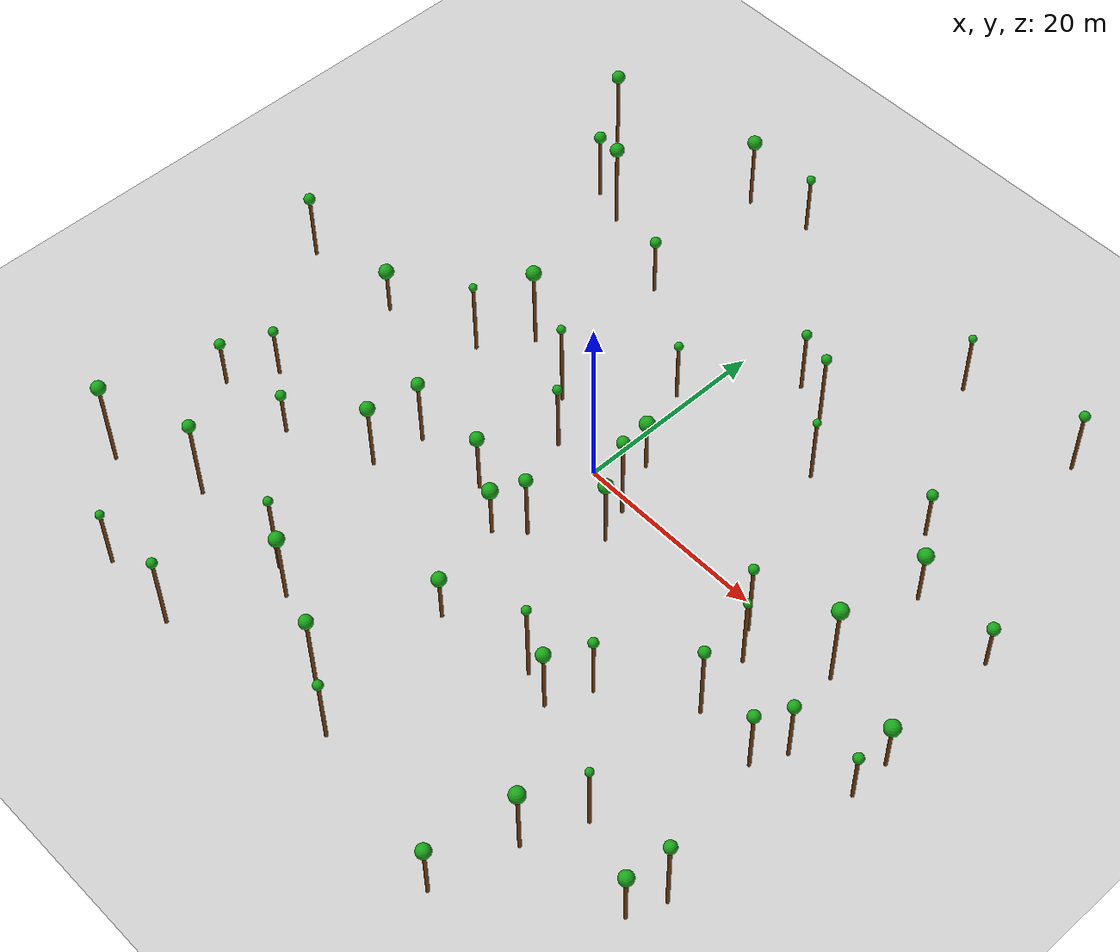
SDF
<sdf version="1.6">
 <world name="forest_world">
  <include><uri>model://sun</uri></include>
  <include><uri>model://ground_plane</uri></include>
  <model name="tree_115">
   <static>true</static>
   <link name="tree_link">
    <collision name="trunk_collision">
     <pose>-4.75 -0.07 3.91 0 0 0</pose>
     <geometry><cylinder><radius>0.18</radius><length>7.83</length></cylinder></geometry>
    </collision>
    <visual name="trunk_visual">
     <pose>-4.75 -0.07 3.91 0 0 0</pose>
     <geometry><cylinder><radius>0.18</radius><length>7.83</length></cylinder></geometry>
     <material><ambient>0.35 0.20 0.05 1</ambient><diffuse>0.45 0.25 0.08 1</diffuse></material>
    </visual>
    <visual name="leaf_visual">
     <pose>-4.75 -0.07 8.07 0 0 0</pose>
     <geometry><sphere><radius>0.48</radius></sphere></geometry>
     <material><ambient>0.05 0.45 0.05 1</ambient><diffuse>0.10 0.65 0.10 1</diffuse></material>
    </visual>
   </link>
  </model>
  <model name="tree_116">
   <static>true</static>
   <link name="tree_link">
    <collision name="trunk_collision">
     <pose>-22.12 24.09 4.78 0 0 0</pose>
     <geometry><cylinder><radius>0.18</radius><length>9.55</length></cylinder></geometry>
    </collision>
    <visual name="trunk_visual">
     <pose>-22.12 24.09 4.78 0 0 0</pose>
     <geometry><cylinder><radius>0.18</radius><length>9.55</length></cylinder></geometry>
     <material><ambient>0.35 0.20 0.05 1</ambient><diffuse>0.45 0.25 0.08 1</diffuse></material>
    </visual>
    <visual name="leaf_visual">
     <pose>-22.12 24.09 9.92 0 0 0</pose>
     <geometry><sphere><radius>0.72</radius></sphere></geometry>
     <material><ambient>0.05 0.45 0.05 1</ambient><diffuse>0.10 0.65 0.10 1</diffuse></material>
    </visual>
   </link>
  </model>
  <model name="tree_117">
   <static>true</static>
   <link name="tree_link">
    <collision name="trunk_collision">
     <pose>-8.00 37.29 3.37 0 0 0</pose>
     <geometry><cylinder><radius>0.18</radius><length>6.73</length></cylinder></geometry>
    </collision>
    <visual name="trunk_visual">
     <pose>-8.00 37.29 3.37 0 0 0</pose>
     <geometry><cylinder><radius>0.18</radius><length>6.73</length></cylinder></geometry>
     <material><ambient>0.35 0.20 0.05 1</ambient><diffuse>0.45 0.25 0.08 1</diffuse></material>
    </visual>
    <visual name="leaf_visual">
     <pose>-8.00 37.29 6.96 0 0 0</pose>
     <geometry><sphere><radius>0.46</radius></sphere></geometry>
     <material><ambient>0.05 0.45 0.05 1</ambient><diffuse>0.10 0.65 0.10 1</diffuse></material>
    </visual>
   </link>
  </model>
  <model name="tree_118">
   <static>true</static>
   <link name="tree_link">
    <collision name="trunk_collision">
     <pose>31.87 -11.92 3.73 0 0 0</pose>
     <geometry><cylinder><radius>0.18</radius><length>7.47</length></cylinder></geometry>
    </collision>
    <visual name="trunk_visual">
     <pose>31.87 -11.92 3.73 0 0 0</pose>
     <geometry><cylinder><radius>0.18</radius><length>7.47</length></cylinder></geometry>
     <material><ambient>0.35 0.20 0.05 1</ambient><diffuse>0.45 0.25 0.08 1</diffuse></material>
    </visual>
    <visual name="leaf_visual">
     <pose>31.87 -11.92 7.77 0 0 0</pose>
     <geometry><sphere><radius>0.61</radius></sphere></geometry>
     <material><ambient>0.05 0.45 0.05 1</ambient><diffuse>0.10 0.65 0.10 1</diffuse></material>
    </visual>
   </link>
  </model>
  <model name="tree_119">
   <static>true</static>
   <link name="tree_link">
    <collision name="trunk_collision">
     <pose>16.97 32.80 3.59 0 0 0</pose>
     <geometry><cylinder><radius>0.18</radius><length>7.17</length></cylinder></geometry>
    </collision>
    <visual name="trunk_visual">
     <pose>16.97 32.80 3.59 0 0 0</pose>
     <geometry><cylinder><radius>0.18</radius><length>7.17</length></cylinder></geometry>
     <material><ambient>0.35 0.20 0.05 1</ambient><diffuse>0.45 0.25 0.08 1</diffuse></material>
    </visual>
    <visual name="leaf_visual">
     <pose>16.97 32.80 7.38 0 0 0</pose>
     <geometry><sphere><radius>0.41</radius></sphere></geometry>
     <material><ambient>0.05 0.45 0.05 1</ambient><diffuse>0.10 0.65 0.10 1</diffuse></material>
    </visual>
   </link>
  </model>
  <model name="tree_120">
   <static>true</static>
   <link name="tree_link">
    <collision name="trunk_collision">
     <pose>36.29 -25.99 4.45 0 0 0</pose>
     <geometry><cylinder><radius>0.18</radius><length>8.89</length></cylinder></geometry>
    </collision>
    <visual name="trunk_visual">
     <pose>36.29 -25.99 4.45 0 0 0</pose>
     <geometry><cylinder><radius>0.18</radius><length>8.89</length></cylinder></geometry>
     <material><ambient>0.35 0.20 0.05 1</ambient><diffuse>0.45 0.25 0.08 1</diffuse></material>
    </visual>
    <visual name="leaf_visual">
     <pose>36.29 -25.99 9.20 0 0 0</pose>
     <geometry><sphere><radius>0.61</radius></sphere></geometry>
     <material><ambient>0.05 0.45 0.05 1</ambient><diffuse>0.10 0.65 0.10 1</diffuse></material>
    </visual>
   </link>
  </model>
  <model name="tree_121">
   <static>true</static>
   <link name="tree_link">
    <collision name="trunk_collision">
     <pose>-13.93 -39.11 4.37 0 0 0</pose>
     <geometry><cylinder><radius>0.18</radius><length>8.73</length></cylinder></geometry>
    </collision>
    <visual name="trunk_visual">
     <pose>-13.93 -39.11 4.37 0 0 0</pose>
     <geometry><cylinder><radius>0.18</radius><length>8.73</length></cylinder></geometry>
     <material><ambient>0.35 0.20 0.05 1</ambient><diffuse>0.45 0.25 0.08 1</diffuse></material>
    </visual>
    <visual name="leaf_visual">
     <pose>-13.93 -39.11 8.98 0 0 0</pose>
     <geometry><sphere><radius>0.50</radius></sphere></geometry>
     <material><ambient>0.05 0.45 0.05 1</ambient><diffuse>0.10 0.65 0.10 1</diffuse></material>
    </visual>
   </link>
  </model>
  <model name="tree_122">
   <static>true</static>
   <link name="tree_link">
    <collision name="trunk_collision">
     <pose>33.44 -8.75 3.65 0 0 0</pose>
     <geometry><cylinder><radius>0.18</radius><length>7.31</length></cylinder></geometry>
    </collision>
    <visual name="trunk_visual">
     <pose>33.44 -8.75 3.65 0 0 0</pose>
     <geometry><cylinder><radius>0.18</radius><length>7.31</length></cylinder></geometry>
     <material><ambient>0.35 0.20 0.05 1</ambient><diffuse>0.45 0.25 0.08 1</diffuse></material>
    </visual>
    <visual name="leaf_visual">
     <pose>33.44 -8.75 7.62 0 0 0</pose>
     <geometry><sphere><radius>0.62</radius></sphere></geometry>
     <material><ambient>0.05 0.45 0.05 1</ambient><diffuse>0.10 0.65 0.10 1</diffuse></material>
    </visual>
   </link>
  </model>
  <model name="tree_123">
   <static>true</static>
   <link name="tree_link">
    <collision name="trunk_collision">
     <pose>25.97 17.21 2.82 0 0 0</pose>
     <geometry><cylinder><radius>0.18</radius><length>5.64</length></cylinder></geometry>
    </collision>
    <visual name="trunk_visual">
     <pose>25.97 17.21 2.82 0 0 0</pose>
     <geometry><cylinder><radius>0.18</radius><length>5.64</length></cylinder></geometry>
     <material><ambient>0.35 0.20 0.05 1</ambient><diffuse>0.45 0.25 0.08 1</diffuse></material>
    </visual>
    <visual name="leaf_visual">
     <pose>25.97 17.21 5.92 0 0 0</pose>
     <geometry><sphere><radius>0.55</radius></sphere></geometry>
     <material><ambient>0.05 0.45 0.05 1</ambient><diffuse>0.10 0.65 0.10 1</diffuse></material>
    </visual>
   </link>
  </model>
  <model name="tree_124">
   <static>true</static>
   <link name="tree_link">
    <collision name="trunk_collision">
     <pose>-25.98 25.47 3.85 0 0 0</pose>
     <geometry><cylinder><radius>0.18</radius><length>7.70</length></cylinder></geometry>
    </collision>
    <visual name="trunk_visual">
     <pose>-25.98 25.47 3.85 0 0 0</pose>
     <geometry><cylinder><radius>0.18</radius><length>7.70</length></cylinder></geometry>
     <material><ambient>0.35 0.20 0.05 1</ambient><diffuse>0.45 0.25 0.08 1</diffuse></material>
    </visual>
    <visual name="leaf_visual">
     <pose>-25.98 25.47 8.00 0 0 0</pose>
     <geometry><sphere><radius>0.61</radius></sphere></geometry>
     <material><ambient>0.05 0.45 0.05 1</ambient><diffuse>0.10 0.65 0.10 1</diffuse></material>
    </visual>
   </link>
  </model>
  <model name="tree_125">
   <static>true</static>
   <link name="tree_link">
    <collision name="trunk_collision">
     <pose>5.04 -1.15 4.92 0 0 0</pose>
     <geometry><cylinder><radius>0.18</radius><length>9.84</length></cylinder></geometry>
    </collision>
    <visual name="trunk_visual">
     <pose>5.04 -1.15 4.92 0 0 0</pose>
     <geometry><cylinder><radius>0.18</radius><length>9.84</length></cylinder></geometry>
     <material><ambient>0.35 0.20 0.05 1</ambient><diffuse>0.45 0.25 0.08 1</diffuse></material>
    </visual>
    <visual name="leaf_visual">
     <pose>5.04 -1.15 10.16 0 0 0</pose>
     <geometry><sphere><radius>0.64</radius></sphere></geometry>
     <material><ambient>0.05 0.45 0.05 1</ambient><diffuse>0.10 0.65 0.10 1</diffuse></material>
    </visual>
   </link>
  </model>
  <model name="tree_126">
   <static>true</static>
   <link name="tree_link">
    <collision name="trunk_collision">
     <pose>30.67 -0.50 4.99 0 0 0</pose>
     <geometry><cylinder><radius>0.18</radius><length>9.99</length></cylinder></geometry>
    </collision>
    <visual name="trunk_visual">
     <pose>30.67 -0.50 4.99 0 0 0</pose>
     <geometry><cylinder><radius>0.18</radius><length>9.99</length></cylinder></geometry>
     <material><ambient>0.35 0.20 0.05 1</ambient><diffuse>0.45 0.25 0.08 1</diffuse></material>
    </visual>
    <visual name="leaf_visual">
     <pose>30.67 -0.50 10.38 0 0 0</pose>
     <geometry><sphere><radius>0.78</radius></sphere></geometry>
     <material><ambient>0.05 0.45 0.05 1</ambient><diffuse>0.10 0.65 0.10 1</diffuse></material>
    </visual>
   </link>
  </model>
  <model name="tree_127">
   <static>true</static>
   <link name="tree_link">
    <collision name="trunk_collision">
     <pose>-8.60 4.01 4.91 0 0 0</pose>
     <geometry><cylinder><radius>0.18</radius><length>9.82</length></cylinder></geometry>
    </collision>
    <visual name="trunk_visual">
     <pose>-8.60 4.01 4.91 0 0 0</pose>
     <geometry><cylinder><radius>0.18</radius><length>9.82</length></cylinder></geometry>
     <material><ambient>0.35 0.20 0.05 1</ambient><diffuse>0.45 0.25 0.08 1</diffuse></material>
    </visual>
    <visual name="leaf_visual">
     <pose>-8.60 4.01 10.04 0 0 0</pose>
     <geometry><sphere><radius>0.44</radius></sphere></geometry>
     <material><ambient>0.05 0.45 0.05 1</ambient><diffuse>0.10 0.65 0.10 1</diffuse></material>
    </visual>
   </link>
  </model>
  <model name="tree_128">
   <static>true</static>
   <link name="tree_link">
    <collision name="trunk_collision">
     <pose>2.79 4.10 2.97 0 0 0</pose>
     <geometry><cylinder><radius>0.18</radius><length>5.95</length></cylinder></geometry>
    </collision>
    <visual name="trunk_visual">
     <pose>2.79 4.10 2.97 0 0 0</pose>
     <geometry><cylinder><radius>0.18</radius><length>5.95</length></cylinder></geometry>
     <material><ambient>0.35 0.20 0.05 1</ambient><diffuse>0.45 0.25 0.08 1</diffuse></material>
    </visual>
    <visual name="leaf_visual">
     <pose>2.79 4.10 6.34 0 0 0</pose>
     <geometry><sphere><radius>0.78</radius></sphere></geometry>
     <material><ambient>0.05 0.45 0.05 1</ambient><diffuse>0.10 0.65 0.10 1</diffuse></material>
    </visual>
   </link>
  </model>
  <model name="tree_129">
   <static>true</static>
   <link name="tree_link">
    <collision name="trunk_collision">
     <pose>-19.04 2.29 4.26 0 0 0</pose>
     <geometry><cylinder><radius>0.18</radius><length>8.51</length></cylinder></geometry>
    </collision>
    <visual name="trunk_visual">
     <pose>-19.04 2.29 4.26 0 0 0</pose>
     <geometry><cylinder><radius>0.18</radius><length>8.51</length></cylinder></geometry>
     <material><ambient>0.35 0.20 0.05 1</ambient><diffuse>0.45 0.25 0.08 1</diffuse></material>
    </visual>
    <visual name="leaf_visual">
     <pose>-19.04 2.29 8.72 0 0 0</pose>
     <geometry><sphere><radius>0.41</radius></sphere></geometry>
     <material><ambient>0.05 0.45 0.05 1</ambient><diffuse>0.10 0.65 0.10 1</diffuse></material>
    </visual>
   </link>
  </model>
  <model name="tree_130">
   <static>true</static>
   <link name="tree_link">
    <collision name="trunk_collision">
     <pose>-15.77 7.09 4.67 0 0 0</pose>
     <geometry><cylinder><radius>0.18</radius><length>9.34</length></cylinder></geometry>
    </collision>
    <visual name="trunk_visual">
     <pose>-15.77 7.09 4.67 0 0 0</pose>
     <geometry><cylinder><radius>0.18</radius><length>9.34</length></cylinder></geometry>
     <material><ambient>0.35 0.20 0.05 1</ambient><diffuse>0.45 0.25 0.08 1</diffuse></material>
    </visual>
    <visual name="leaf_visual">
     <pose>-15.77 7.09 9.72 0 0 0</pose>
     <geometry><sphere><radius>0.76</radius></sphere></geometry>
     <material><ambient>0.05 0.45 0.05 1</ambient><diffuse>0.10 0.65 0.10 1</diffuse></material>
    </visual>
   </link>
  </model>
  <model name="tree_131">
   <static>true</static>
   <link name="tree_link">
    <collision name="trunk_collision">
     <pose>24.22 -31.34 4.03 0 0 0</pose>
     <geometry><cylinder><radius>0.18</radius><length>8.07</length></cylinder></geometry>
    </collision>
    <visual name="trunk_visual">
     <pose>24.22 -31.34 4.03 0 0 0</pose>
     <geometry><cylinder><radius>0.18</radius><length>8.07</length></cylinder></geometry>
     <material><ambient>0.35 0.20 0.05 1</ambient><diffuse>0.45 0.25 0.08 1</diffuse></material>
    </visual>
    <visual name="leaf_visual">
     <pose>24.22 -31.34 8.45 0 0 0</pose>
     <geometry><sphere><radius>0.77</radius></sphere></geometry>
     <material><ambient>0.05 0.45 0.05 1</ambient><diffuse>0.10 0.65 0.10 1</diffuse></material>
    </visual>
   </link>
  </model>
  <model name="tree_132">
   <static>true</static>
   <link name="tree_link">
    <collision name="trunk_collision">
     <pose>6.33 -4.50 3.84 0 0 0</pose>
     <geometry><cylinder><radius>0.18</radius><length>7.69</length></cylinder></geometry>
    </collision>
    <visual name="trunk_visual">
     <pose>6.33 -4.50 3.84 0 0 0</pose>
     <geometry><cylinder><radius>0.18</radius><length>7.69</length></cylinder></geometry>
     <material><ambient>0.35 0.20 0.05 1</ambient><diffuse>0.45 0.25 0.08 1</diffuse></material>
    </visual>
    <visual name="leaf_visual">
     <pose>6.33 -4.50 8.06 0 0 0</pose>
     <geometry><sphere><radius>0.73</radius></sphere></geometry>
     <material><ambient>0.05 0.45 0.05 1</ambient><diffuse>0.10 0.65 0.10 1</diffuse></material>
    </visual>
   </link>
  </model>
  <model name="tree_133">
   <static>true</static>
   <link name="tree_link">
    <collision name="trunk_collision">
     <pose>-1.46 -11.43 2.88 0 0 0</pose>
     <geometry><cylinder><radius>0.18</radius><length>5.77</length></cylinder></geometry>
    </collision>
    <visual name="trunk_visual">
     <pose>-1.46 -11.43 2.88 0 0 0</pose>
     <geometry><cylinder><radius>0.18</radius><length>5.77</length></cylinder></geometry>
     <material><ambient>0.35 0.20 0.05 1</ambient><diffuse>0.45 0.25 0.08 1</diffuse></material>
    </visual>
    <visual name="leaf_visual">
     <pose>-1.46 -11.43 6.16 0 0 0</pose>
     <geometry><sphere><radius>0.79</radius></sphere></geometry>
     <material><ambient>0.05 0.45 0.05 1</ambient><diffuse>0.10 0.65 0.10 1</diffuse></material>
    </visual>
   </link>
  </model>
  <model name="tree_134">
   <static>true</static>
   <link name="tree_link">
    <collision name="trunk_collision">
     <pose>39.80 -3.42 2.73 0 0 0</pose>
     <geometry><cylinder><radius>0.18</radius><length>5.47</length></cylinder></geometry>
    </collision>
    <visual name="trunk_visual">
     <pose>39.80 -3.42 2.73 0 0 0</pose>
     <geometry><cylinder><radius>0.18</radius><length>5.47</length></cylinder></geometry>
     <material><ambient>0.35 0.20 0.05 1</ambient><diffuse>0.45 0.25 0.08 1</diffuse></material>
    </visual>
    <visual name="leaf_visual">
     <pose>39.80 -3.42 5.86 0 0 0</pose>
     <geometry><sphere><radius>0.79</radius></sphere></geometry>
     <material><ambient>0.05 0.45 0.05 1</ambient><diffuse>0.10 0.65 0.10 1</diffuse></material>
    </visual>
   </link>
  </model>
  <model name="tree_135">
   <static>true</static>
   <link name="tree_link">
    <collision name="trunk_collision">
     <pose>34.94 -29.47 3.18 0 0 0</pose>
     <geometry><cylinder><radius>0.18</radius><length>6.36</length></cylinder></geometry>
    </collision>
    <visual name="trunk_visual">
     <pose>34.94 -29.47 3.18 0 0 0</pose>
     <geometry><cylinder><radius>0.18</radius><length>6.36</length></cylinder></geometry>
     <material><ambient>0.35 0.20 0.05 1</ambient><diffuse>0.45 0.25 0.08 1</diffuse></material>
    </visual>
    <visual name="leaf_visual">
     <pose>34.94 -29.47 6.72 0 0 0</pose>
     <geometry><sphere><radius>0.72</radius></sphere></geometry>
     <material><ambient>0.05 0.45 0.05 1</ambient><diffuse>0.10 0.65 0.10 1</diffuse></material>
    </visual>
   </link>
  </model>
  <model name="tree_136">
   <static>true</static>
   <link name="tree_link">
    <collision name="trunk_collision">
     <pose>30.26 32.90 3.70 0 0 0</pose>
     <geometry><cylinder><radius>0.18</radius><length>7.41</length></cylinder></geometry>
    </collision>
    <visual name="trunk_visual">
     <pose>30.26 32.90 3.70 0 0 0</pose>
     <geometry><cylinder><radius>0.18</radius><length>7.41</length></cylinder></geometry>
     <material><ambient>0.35 0.20 0.05 1</ambient><diffuse>0.45 0.25 0.08 1</diffuse></material>
    </visual>
    <visual name="leaf_visual">
     <pose>30.26 32.90 7.67 0 0 0</pose>
     <geometry><sphere><radius>0.52</radius></sphere></geometry>
     <material><ambient>0.05 0.45 0.05 1</ambient><diffuse>0.10 0.65 0.10 1</diffuse></material>
    </visual>
   </link>
  </model>
  <model name="tree_137">
   <static>true</static>
   <link name="tree_link">
    <collision name="trunk_collision">
     <pose>-1.36 12.23 3.50 0 0 0</pose>
     <geometry><cylinder><radius>0.18</radius><length>7.01</length></cylinder></geometry>
    </collision>
    <visual name="trunk_visual">
     <pose>-1.36 12.23 3.50 0 0 0</pose>
     <geometry><cylinder><radius>0.18</radius><length>7.01</length></cylinder></geometry>
     <material><ambient>0.35 0.20 0.05 1</ambient><diffuse>0.45 0.25 0.08 1</diffuse></material>
    </visual>
    <visual name="leaf_visual">
     <pose>-1.36 12.23 7.23 0 0 0</pose>
     <geometry><sphere><radius>0.44</radius></sphere></geometry>
     <material><ambient>0.05 0.45 0.05 1</ambient><diffuse>0.10 0.65 0.10 1</diffuse></material>
    </visual>
   </link>
  </model>
  <model name="tree_138">
   <static>true</static>
   <link name="tree_link">
    <collision name="trunk_collision">
     <pose>-30.28 32.08 4.36 0 0 0</pose>
     <geometry><cylinder><radius>0.18</radius><length>8.72</length></cylinder></geometry>
    </collision>
    <visual name="trunk_visual">
     <pose>-30.28 32.08 4.36 0 0 0</pose>
     <geometry><cylinder><radius>0.18</radius><length>8.72</length></cylinder></geometry>
     <material><ambient>0.35 0.20 0.05 1</ambient><diffuse>0.45 0.25 0.08 1</diffuse></material>
    </visual>
    <visual name="leaf_visual">
     <pose>-30.28 32.08 9.06 0 0 0</pose>
     <geometry><sphere><radius>0.68</radius></sphere></geometry>
     <material><ambient>0.05 0.45 0.05 1</ambient><diffuse>0.10 0.65 0.10 1</diffuse></material>
    </visual>
   </link>
  </model>
  <model name="tree_139">
   <static>true</static>
   <link name="tree_link">
    <collision name="trunk_collision">
     <pose>-39.51 -1.09 3.75 0 0 0</pose>
     <geometry><cylinder><radius>0.18</radius><length>7.49</length></cylinder></geometry>
    </collision>
    <visual name="trunk_visual">
     <pose>-39.51 -1.09 3.75 0 0 0</pose>
     <geometry><cylinder><radius>0.18</radius><length>7.49</length></cylinder></geometry>
     <material><ambient>0.35 0.20 0.05 1</ambient><diffuse>0.45 0.25 0.08 1</diffuse></material>
    </visual>
    <visual name="leaf_visual">
     <pose>-39.51 -1.09 7.79 0 0 0</pose>
     <geometry><sphere><radius>0.58</radius></sphere></geometry>
     <material><ambient>0.05 0.45 0.05 1</ambient><diffuse>0.10 0.65 0.10 1</diffuse></material>
    </visual>
   </link>
  </model>
  <model name="tree_140">
   <static>true</static>
   <link name="tree_link">
    <collision name="trunk_collision">
     <pose>14.20 14.45 3.88 0 0 0</pose>
     <geometry><cylinder><radius>0.18</radius><length>7.75</length></cylinder></geometry>
    </collision>
    <visual name="trunk_visual">
     <pose>14.20 14.45 3.88 0 0 0</pose>
     <geometry><cylinder><radius>0.18</radius><length>7.75</length></cylinder></geometry>
     <material><ambient>0.35 0.20 0.05 1</ambient><diffuse>0.45 0.25 0.08 1</diffuse></material>
    </visual>
    <visual name="leaf_visual">
     <pose>14.20 14.45 7.95 0 0 0</pose>
     <geometry><sphere><radius>0.40</radius></sphere></geometry>
     <material><ambient>0.05 0.45 0.05 1</ambient><diffuse>0.10 0.65 0.10 1</diffuse></material>
    </visual>
   </link>
  </model>
  <model name="tree_141">
   <static>true</static>
   <link name="tree_link">
    <collision name="trunk_collision">
     <pose>30.28 11.36 3.08 0 0 0</pose>
     <geometry><cylinder><radius>0.18</radius><length>6.16</length></cylinder></geometry>
    </collision>
    <visual name="trunk_visual">
     <pose>30.28 11.36 3.08 0 0 0</pose>
     <geometry><cylinder><radius>0.18</radius><length>6.16</length></cylinder></geometry>
     <material><ambient>0.35 0.20 0.05 1</ambient><diffuse>0.45 0.25 0.08 1</diffuse></material>
    </visual>
    <visual name="leaf_visual">
     <pose>30.28 11.36 6.55 0 0 0</pose>
     <geometry><sphere><radius>0.77</radius></sphere></geometry>
     <material><ambient>0.05 0.45 0.05 1</ambient><diffuse>0.10 0.65 0.10 1</diffuse></material>
    </visual>
   </link>
  </model>
  <model name="tree_142">
   <static>true</static>
   <link name="tree_link">
    <collision name="trunk_collision">
     <pose>-11.72 -28.05 4.81 0 0 0</pose>
     <geometry><cylinder><radius>0.18</radius><length>9.62</length></cylinder></geometry>
    </collision>
    <visual name="trunk_visual">
     <pose>-11.72 -28.05 4.81 0 0 0</pose>
     <geometry><cylinder><radius>0.18</radius><length>9.62</length></cylinder></geometry>
     <material><ambient>0.35 0.20 0.05 1</ambient><diffuse>0.45 0.25 0.08 1</diffuse></material>
    </visual>
    <visual name="leaf_visual">
     <pose>-11.72 -28.05 9.85 0 0 0</pose>
     <geometry><sphere><radius>0.46</radius></sphere></geometry>
     <material><ambient>0.05 0.45 0.05 1</ambient><diffuse>0.10 0.65 0.10 1</diffuse></material>
    </visual>
   </link>
  </model>
  <model name="tree_143">
   <static>true</static>
   <link name="tree_link">
    <collision name="trunk_collision">
     <pose>17.40 -16.48 3.66 0 0 0</pose>
     <geometry><cylinder><radius>0.18</radius><length>7.33</length></cylinder></geometry>
    </collision>
    <visual name="trunk_visual">
     <pose>17.40 -16.48 3.66 0 0 0</pose>
     <geometry><cylinder><radius>0.18</radius><length>7.33</length></cylinder></geometry>
     <material><ambient>0.35 0.20 0.05 1</ambient><diffuse>0.45 0.25 0.08 1</diffuse></material>
    </visual>
    <visual name="leaf_visual">
     <pose>17.40 -16.48 7.58 0 0 0</pose>
     <geometry><sphere><radius>0.50</radius></sphere></geometry>
     <material><ambient>0.05 0.45 0.05 1</ambient><diffuse>0.10 0.65 0.10 1</diffuse></material>
    </visual>
   </link>
  </model>
  <model name="tree_144">
   <static>true</static>
   <link name="tree_link">
    <collision name="trunk_collision">
     <pose>39.91 -7.71 2.89 0 0 0</pose>
     <geometry><cylinder><radius>0.18</radius><length>5.78</length></cylinder></geometry>
    </collision>
    <visual name="trunk_visual">
     <pose>39.91 -7.71 2.89 0 0 0</pose>
     <geometry><cylinder><radius>0.18</radius><length>5.78</length></cylinder></geometry>
     <material><ambient>0.35 0.20 0.05 1</ambient><diffuse>0.45 0.25 0.08 1</diffuse></material>
    </visual>
    <visual name="leaf_visual">
     <pose>39.91 -7.71 6.04 0 0 0</pose>
     <geometry><sphere><radius>0.52</radius></sphere></geometry>
     <material><ambient>0.05 0.45 0.05 1</ambient><diffuse>0.10 0.65 0.10 1</diffuse></material>
    </visual>
   </link>
  </model>
  <model name="tree_145">
   <static>true</static>
   <link name="tree_link">
    <collision name="trunk_collision">
     <pose>-22.62 -38.69 3.42 0 0 0</pose>
     <geometry><cylinder><radius>0.18</radius><length>6.84</length></cylinder></geometry>
    </collision>
    <visual name="trunk_visual">
     <pose>-22.62 -38.69 3.42 0 0 0</pose>
     <geometry><cylinder><radius>0.18</radius><length>6.84</length></cylinder></geometry>
     <material><ambient>0.35 0.20 0.05 1</ambient><diffuse>0.45 0.25 0.08 1</diffuse></material>
    </visual>
    <visual name="leaf_visual">
     <pose>-22.62 -38.69 7.05 0 0 0</pose>
     <geometry><sphere><radius>0.43</radius></sphere></geometry>
     <material><ambient>0.05 0.45 0.05 1</ambient><diffuse>0.10 0.65 0.10 1</diffuse></material>
    </visual>
   </link>
  </model>
  <model name="tree_146">
   <static>true</static>
   <link name="tree_link">
    <collision name="trunk_collision">
     <pose>-6.11 -8.81 3.38 0 0 0</pose>
     <geometry><cylinder><radius>0.18</radius><length>6.77</length></cylinder></geometry>
    </collision>
    <visual name="trunk_visual">
     <pose>-6.11 -8.81 3.38 0 0 0</pose>
     <geometry><cylinder><radius>0.18</radius><length>6.77</length></cylinder></geometry>
     <material><ambient>0.35 0.20 0.05 1</ambient><diffuse>0.45 0.25 0.08 1</diffuse></material>
    </visual>
    <visual name="leaf_visual">
     <pose>-6.11 -8.81 7.12 0 0 0</pose>
     <geometry><sphere><radius>0.71</radius></sphere></geometry>
     <material><ambient>0.05 0.45 0.05 1</ambient><diffuse>0.10 0.65 0.10 1</diffuse></material>
    </visual>
   </link>
  </model>
  <model name="tree_147">
   <static>true</static>
   <link name="tree_link">
    <collision name="trunk_collision">
     <pose>26.54 -25.54 3.96 0 0 0</pose>
     <geometry><cylinder><radius>0.18</radius><length>7.93</length></cylinder></geometry>
    </collision>
    <visual name="trunk_visual">
     <pose>26.54 -25.54 3.96 0 0 0</pose>
     <geometry><cylinder><radius>0.18</radius><length>7.93</length></cylinder></geometry>
     <material><ambient>0.35 0.20 0.05 1</ambient><diffuse>0.45 0.25 0.08 1</diffuse></material>
    </visual>
    <visual name="leaf_visual">
     <pose>26.54 -25.54 8.13 0 0 0</pose>
     <geometry><sphere><radius>0.41</radius></sphere></geometry>
     <material><ambient>0.05 0.45 0.05 1</ambient><diffuse>0.10 0.65 0.10 1</diffuse></material>
    </visual>
   </link>
  </model>
  <model name="tree_148">
   <static>true</static>
   <link name="tree_link">
    <collision name="trunk_collision">
     <pose>-28.68 -0.58 2.55 0 0 0</pose>
     <geometry><cylinder><radius>0.18</radius><length>5.10</length></cylinder></geometry>
    </collision>
    <visual name="trunk_visual">
     <pose>-28.68 -0.58 2.55 0 0 0</pose>
     <geometry><cylinder><radius>0.18</radius><length>5.10</length></cylinder></geometry>
     <material><ambient>0.35 0.20 0.05 1</ambient><diffuse>0.45 0.25 0.08 1</diffuse></material>
    </visual>
    <visual name="leaf_visual">
     <pose>-28.68 -0.58 5.48 0 0 0</pose>
     <geometry><sphere><radius>0.77</radius></sphere></geometry>
     <material><ambient>0.05 0.45 0.05 1</ambient><diffuse>0.10 0.65 0.10 1</diffuse></material>
    </visual>
   </link>
  </model>
  <model name="tree_149">
   <static>true</static>
   <link name="tree_link">
    <collision name="trunk_collision">
     <pose>2.41 -20.87 2.65 0 0 0</pose>
     <geometry><cylinder><radius>0.18</radius><length>5.30</length></cylinder></geometry>
    </collision>
    <visual name="trunk_visual">
     <pose>2.41 -20.87 2.65 0 0 0</pose>
     <geometry><cylinder><radius>0.18</radius><length>5.30</length></cylinder></geometry>
     <material><ambient>0.35 0.20 0.05 1</ambient><diffuse>0.45 0.25 0.08 1</diffuse></material>
    </visual>
    <visual name="leaf_visual">
     <pose>2.41 -20.87 5.66 0 0 0</pose>
     <geometry><sphere><radius>0.72</radius></sphere></geometry>
     <material><ambient>0.05 0.45 0.05 1</ambient><diffuse>0.10 0.65 0.10 1</diffuse></material>
    </visual>
   </link>
  </model>
  <model name="tree_150">
   <static>true</static>
   <link name="tree_link">
    <collision name="trunk_collision">
     <pose>0.88 -9.15 3.79 0 0 0</pose>
     <geometry><cylinder><radius>0.18</radius><length>7.58</length></cylinder></geometry>
    </collision>
    <visual name="trunk_visual">
     <pose>0.88 -9.15 3.79 0 0 0</pose>
     <geometry><cylinder><radius>0.18</radius><length>7.58</length></cylinder></geometry>
     <material><ambient>0.35 0.20 0.05 1</ambient><diffuse>0.45 0.25 0.08 1</diffuse></material>
    </visual>
    <visual name="leaf_visual">
     <pose>0.88 -9.15 7.90 0 0 0</pose>
     <geometry><sphere><radius>0.65</radius></sphere></geometry>
     <material><ambient>0.05 0.45 0.05 1</ambient><diffuse>0.10 0.65 0.10 1</diffuse></material>
    </visual>
   </link>
  </model>
  <model name="tree_151">
   <static>true</static>
   <link name="tree_link">
    <collision name="trunk_collision">
     <pose>-29.75 -13.64 2.87 0 0 0</pose>
     <geometry><cylinder><radius>0.18</radius><length>5.75</length></cylinder></geometry>
    </collision>
    <visual name="trunk_visual">
     <pose>-29.75 -13.64 2.87 0 0 0</pose>
     <geometry><cylinder><radius>0.18</radius><length>5.75</length></cylinder></geometry>
     <material><ambient>0.35 0.20 0.05 1</ambient><diffuse>0.45 0.25 0.08 1</diffuse></material>
    </visual>
    <visual name="leaf_visual">
     <pose>-29.75 -13.64 6.00 0 0 0</pose>
     <geometry><sphere><radius>0.49</radius></sphere></geometry>
     <material><ambient>0.05 0.45 0.05 1</ambient><diffuse>0.10 0.65 0.10 1</diffuse></material>
    </visual>
   </link>
  </model>
  <model name="tree_152">
   <static>true</static>
   <link name="tree_link">
    <collision name="trunk_collision">
     <pose>-14.04 -8.97 3.88 0 0 0</pose>
     <geometry><cylinder><radius>0.18</radius><length>7.76</length></cylinder></geometry>
    </collision>
    <visual name="trunk_visual">
     <pose>-14.04 -8.97 3.88 0 0 0</pose>
     <geometry><cylinder><radius>0.18</radius><length>7.76</length></cylinder></geometry>
     <material><ambient>0.35 0.20 0.05 1</ambient><diffuse>0.45 0.25 0.08 1</diffuse></material>
    </visual>
    <visual name="leaf_visual">
     <pose>-14.04 -8.97 8.09 0 0 0</pose>
     <geometry><sphere><radius>0.66</radius></sphere></geometry>
     <material><ambient>0.05 0.45 0.05 1</ambient><diffuse>0.10 0.65 0.10 1</diffuse></material>
    </visual>
   </link>
  </model>
  <model name="tree_153">
   <static>true</static>
   <link name="tree_link">
    <collision name="trunk_collision">
     <pose>-23.19 -27.97 4.78 0 0 0</pose>
     <geometry><cylinder><radius>0.18</radius><length>9.57</length></cylinder></geometry>
    </collision>
    <visual name="trunk_visual">
     <pose>-23.19 -27.97 4.78 0 0 0</pose>
     <geometry><cylinder><radius>0.18</radius><length>9.57</length></cylinder></geometry>
     <material><ambient>0.35 0.20 0.05 1</ambient><diffuse>0.45 0.25 0.08 1</diffuse></material>
    </visual>
    <visual name="leaf_visual">
     <pose>-23.19 -27.97 9.88 0 0 0</pose>
     <geometry><sphere><radius>0.63</radius></sphere></geometry>
     <material><ambient>0.05 0.45 0.05 1</ambient><diffuse>0.10 0.65 0.10 1</diffuse></material>
    </visual>
   </link>
  </model>
  <model name="tree_154">
   <static>true</static>
   <link name="tree_link">
    <collision name="trunk_collision">
     <pose>25.32 -11.22 4.55 0 0 0</pose>
     <geometry><cylinder><radius>0.18</radius><length>9.10</length></cylinder></geometry>
    </collision>
    <visual name="trunk_visual">
     <pose>25.32 -11.22 4.55 0 0 0</pose>
     <geometry><cylinder><radius>0.18</radius><length>9.10</length></cylinder></geometry>
     <material><ambient>0.35 0.20 0.05 1</ambient><diffuse>0.45 0.25 0.08 1</diffuse></material>
    </visual>
    <visual name="leaf_visual">
     <pose>25.32 -11.22 9.38 0 0 0</pose>
     <geometry><sphere><radius>0.57</radius></sphere></geometry>
     <material><ambient>0.05 0.45 0.05 1</ambient><diffuse>0.10 0.65 0.10 1</diffuse></material>
    </visual>
   </link>
  </model>
  <model name="tree_155">
   <static>true</static>
   <link name="tree_link">
    <collision name="trunk_collision">
     <pose>24.16 -4.81 4.36 0 0 0</pose>
     <geometry><cylinder><radius>0.18</radius><length>8.73</length></cylinder></geometry>
    </collision>
    <visual name="trunk_visual">
     <pose>24.16 -4.81 4.36 0 0 0</pose>
     <geometry><cylinder><radius>0.18</radius><length>8.73</length></cylinder></geometry>
     <material><ambient>0.35 0.20 0.05 1</ambient><diffuse>0.45 0.25 0.08 1</diffuse></material>
    </visual>
    <visual name="leaf_visual">
     <pose>24.16 -4.81 8.94 0 0 0</pose>
     <geometry><sphere><radius>0.42</radius></sphere></geometry>
     <material><ambient>0.05 0.45 0.05 1</ambient><diffuse>0.10 0.65 0.10 1</diffuse></material>
    </visual>
   </link>
  </model>
  <model name="tree_156">
   <static>true</static>
   <link name="tree_link">
    <collision name="trunk_collision">
     <pose>15.58 -20.57 3.81 0 0 0</pose>
     <geometry><cylinder><radius>0.18</radius><length>7.61</length></cylinder></geometry>
    </collision>
    <visual name="trunk_visual">
     <pose>15.58 -20.57 3.81 0 0 0</pose>
     <geometry><cylinder><radius>0.18</radius><length>7.61</length></cylinder></geometry>
     <material><ambient>0.35 0.20 0.05 1</ambient><diffuse>0.45 0.25 0.08 1</diffuse></material>
    </visual>
    <visual name="leaf_visual">
     <pose>15.58 -20.57 7.96 0 0 0</pose>
     <geometry><sphere><radius>0.70</radius></sphere></geometry>
     <material><ambient>0.05 0.45 0.05 1</ambient><diffuse>0.10 0.65 0.10 1</diffuse></material>
    </visual>
   </link>
  </model>
  <model name="tree_157">
   <static>true</static>
   <link name="tree_link">
    <collision name="trunk_collision">
     <pose>-8.80 -29.60 4.12 0 0 0</pose>
     <geometry><cylinder><radius>0.18</radius><length>8.24</length></cylinder></geometry>
    </collision>
    <visual name="trunk_visual">
     <pose>-8.80 -29.60 4.12 0 0 0</pose>
     <geometry><cylinder><radius>0.18</radius><length>8.24</length></cylinder></geometry>
     <material><ambient>0.35 0.20 0.05 1</ambient><diffuse>0.45 0.25 0.08 1</diffuse></material>
    </visual>
    <visual name="leaf_visual">
     <pose>-8.80 -29.60 8.62 0 0 0</pose>
     <geometry><sphere><radius>0.75</radius></sphere></geometry>
     <material><ambient>0.05 0.45 0.05 1</ambient><diffuse>0.10 0.65 0.10 1</diffuse></material>
    </visual>
   </link>
  </model>
  <model name="tree_158">
   <static>true</static>
   <link name="tree_link">
    <collision name="trunk_collision">
     <pose>12.21 -19.35 4.77 0 0 0</pose>
     <geometry><cylinder><radius>0.18</radius><length>9.55</length></cylinder></geometry>
    </collision>
    <visual name="trunk_visual">
     <pose>12.21 -19.35 4.77 0 0 0</pose>
     <geometry><cylinder><radius>0.18</radius><length>9.55</length></cylinder></geometry>
     <material><ambient>0.35 0.20 0.05 1</ambient><diffuse>0.45 0.25 0.08 1</diffuse></material>
    </visual>
    <visual name="leaf_visual">
     <pose>12.21 -19.35 9.78 0 0 0</pose>
     <geometry><sphere><radius>0.46</radius></sphere></geometry>
     <material><ambient>0.05 0.45 0.05 1</ambient><diffuse>0.10 0.65 0.10 1</diffuse></material>
    </visual>
   </link>
  </model>
  <model name="tree_159">
   <static>true</static>
   <link name="tree_link">
    <collision name="trunk_collision">
     <pose>22.11 -39.57 3.18 0 0 0</pose>
     <geometry><cylinder><radius>0.18</radius><length>6.35</length></cylinder></geometry>
    </collision>
    <visual name="trunk_visual">
     <pose>22.11 -39.57 3.18 0 0 0</pose>
     <geometry><cylinder><radius>0.18</radius><length>6.35</length></cylinder></geometry>
     <material><ambient>0.35 0.20 0.05 1</ambient><diffuse>0.45 0.25 0.08 1</diffuse></material>
    </visual>
    <visual name="leaf_visual">
     <pose>22.11 -39.57 6.71 0 0 0</pose>
     <geometry><sphere><radius>0.71</radius></sphere></geometry>
     <material><ambient>0.05 0.45 0.05 1</ambient><diffuse>0.10 0.65 0.10 1</diffuse></material>
    </visual>
   </link>
  </model>
  <model name="tree_160">
   <static>true</static>
   <link name="tree_link">
    <collision name="trunk_collision">
     <pose>10.00 20.10 4.21 0 0 0</pose>
     <geometry><cylinder><radius>0.18</radius><length>8.41</length></cylinder></geometry>
    </collision>
    <visual name="trunk_visual">
     <pose>10.00 20.10 4.21 0 0 0</pose>
     <geometry><cylinder><radius>0.18</radius><length>8.41</length></cylinder></geometry>
     <material><ambient>0.35 0.20 0.05 1</ambient><diffuse>0.45 0.25 0.08 1</diffuse></material>
    </visual>
    <visual name="leaf_visual">
     <pose>10.00 20.10 8.67 0 0 0</pose>
     <geometry><sphere><radius>0.51</radius></sphere></geometry>
     <material><ambient>0.05 0.45 0.05 1</ambient><diffuse>0.10 0.65 0.10 1</diffuse></material>
    </visual>
   </link>
  </model>
  <model name="tree_161">
   <static>true</static>
   <link name="tree_link">
    <collision name="trunk_collision">
     <pose>-23.64 -17.70 2.50 0 0 0</pose>
     <geometry><cylinder><radius>0.18</radius><length>5.01</length></cylinder></geometry>
    </collision>
    <visual name="trunk_visual">
     <pose>-23.64 -17.70 2.50 0 0 0</pose>
     <geometry><cylinder><radius>0.18</radius><length>5.01</length></cylinder></geometry>
     <material><ambient>0.35 0.20 0.05 1</ambient><diffuse>0.45 0.25 0.08 1</diffuse></material>
    </visual>
    <visual name="leaf_visual">
     <pose>-23.64 -17.70 5.27 0 0 0</pose>
     <geometry><sphere><radius>0.53</radius></sphere></geometry>
     <material><ambient>0.05 0.45 0.05 1</ambient><diffuse>0.10 0.65 0.10 1</diffuse></material>
    </visual>
   </link>
  </model>
  <model name="tree_162">
   <static>true</static>
   <link name="tree_link">
    <collision name="trunk_collision">
     <pose>-32.29 -18.11 2.67 0 0 0</pose>
     <geometry><cylinder><radius>0.18</radius><length>5.33</length></cylinder></geometry>
    </collision>
    <visual name="trunk_visual">
     <pose>-32.29 -18.11 2.67 0 0 0</pose>
     <geometry><cylinder><radius>0.18</radius><length>5.33</length></cylinder></geometry>
     <material><ambient>0.35 0.20 0.05 1</ambient><diffuse>0.45 0.25 0.08 1</diffuse></material>
    </visual>
    <visual name="leaf_visual">
     <pose>-32.29 -18.11 5.60 0 0 0</pose>
     <geometry><sphere><radius>0.54</radius></sphere></geometry>
     <material><ambient>0.05 0.45 0.05 1</ambient><diffuse>0.10 0.65 0.10 1</diffuse></material>
    </visual>
   </link>
  </model>
  <model name="tree_163">
   <static>true</static>
   <link name="tree_link">
    <collision name="trunk_collision">
     <pose>-14.48 35.84 4.05 0 0 0</pose>
     <geometry><cylinder><radius>0.18</radius><length>8.10</length></cylinder></geometry>
    </collision>
    <visual name="trunk_visual">
     <pose>-14.48 35.84 4.05 0 0 0</pose>
     <geometry><cylinder><radius>0.18</radius><length>8.10</length></cylinder></geometry>
     <material><ambient>0.35 0.20 0.05 1</ambient><diffuse>0.45 0.25 0.08 1</diffuse></material>
    </visual>
    <visual name="leaf_visual">
     <pose>-14.48 35.84 8.47 0 0 0</pose>
     <geometry><sphere><radius>0.74</radius></sphere></geometry>
     <material><ambient>0.05 0.45 0.05 1</ambient><diffuse>0.10 0.65 0.10 1</diffuse></material>
    </visual>
   </link>
  </model>
  <model name="tree_164">
   <static>true</static>
   <link name="tree_link">
    <collision name="trunk_collision">
     <pose>4.94 -36.24 3.87 0 0 0</pose>
     <geometry><cylinder><radius>0.18</radius><length>7.73</length></cylinder></geometry>
    </collision>
    <visual name="trunk_visual">
     <pose>4.94 -36.24 3.87 0 0 0</pose>
     <geometry><cylinder><radius>0.18</radius><length>7.73</length></cylinder></geometry>
     <material><ambient>0.35 0.20 0.05 1</ambient><diffuse>0.45 0.25 0.08 1</diffuse></material>
    </visual>
    <visual name="leaf_visual">
     <pose>4.94 -36.24 7.98 0 0 0</pose>
     <geometry><sphere><radius>0.49</radius></sphere></geometry>
     <material><ambient>0.05 0.45 0.05 1</ambient><diffuse>0.10 0.65 0.10 1</diffuse></material>
    </visual>
   </link>
  </model>
  <model name="tree_165">
   <static>true</static>
   <link name="tree_link">
    <collision name="trunk_collision">
     <pose>22.15 -2.07 4.48 0 0 0</pose>
     <geometry><cylinder><radius>0.18</radius><length>8.96</length></cylinder></geometry>
    </collision>
    <visual name="trunk_visual">
     <pose>22.15 -2.07 4.48 0 0 0</pose>
     <geometry><cylinder><radius>0.18</radius><length>8.96</length></cylinder></geometry>
     <material><ambient>0.35 0.20 0.05 1</ambient><diffuse>0.45 0.25 0.08 1</diffuse></material>
    </visual>
    <visual name="leaf_visual">
     <pose>22.15 -2.07 9.20 0 0 0</pose>
     <geometry><sphere><radius>0.49</radius></sphere></geometry>
     <material><ambient>0.05 0.45 0.05 1</ambient><diffuse>0.10 0.65 0.10 1</diffuse></material>
    </visual>
   </link>
  </model>
  <model name="tree_166">
   <static>true</static>
   <link name="tree_link">
    <collision name="trunk_collision">
     <pose>0.07 -33.42 4.47 0 0 0</pose>
     <geometry><cylinder><radius>0.18</radius><length>8.93</length></cylinder></geometry>
    </collision>
    <visual name="trunk_visual">
     <pose>0.07 -33.42 4.47 0 0 0</pose>
     <geometry><cylinder><radius>0.18</radius><length>8.93</length></cylinder></geometry>
     <material><ambient>0.35 0.20 0.05 1</ambient><diffuse>0.45 0.25 0.08 1</diffuse></material>
    </visual>
    <visual name="leaf_visual">
     <pose>0.07 -33.42 9.27 0 0 0</pose>
     <geometry><sphere><radius>0.68</radius></sphere></geometry>
     <material><ambient>0.05 0.45 0.05 1</ambient><diffuse>0.10 0.65 0.10 1</diffuse></material>
    </visual>
   </link>
  </model>
  <model name="tree_167">
   <static>true</static>
   <link name="tree_link">
    <collision name="trunk_collision">
     <pose>-14.94 -14.23 3.89 0 0 0</pose>
     <geometry><cylinder><radius>0.18</radius><length>7.79</length></cylinder></geometry>
    </collision>
    <visual name="trunk_visual">
     <pose>-14.94 -14.23 3.89 0 0 0</pose>
     <geometry><cylinder><radius>0.18</radius><length>7.79</length></cylinder></geometry>
     <material><ambient>0.35 0.20 0.05 1</ambient><diffuse>0.45 0.25 0.08 1</diffuse></material>
    </visual>
    <visual name="leaf_visual">
     <pose>-14.94 -14.23 8.15 0 0 0</pose>
     <geometry><sphere><radius>0.73</radius></sphere></geometry>
     <material><ambient>0.05 0.45 0.05 1</ambient><diffuse>0.10 0.65 0.10 1</diffuse></material>
    </visual>
   </link>
  </model>
  <model name="tree_168">
   <static>true</static>
   <link name="tree_link">
    <collision name="trunk_collision">
     <pose>-32.03 -31.39 4.98 0 0 0</pose>
     <geometry><cylinder><radius>0.18</radius><length>9.96</length></cylinder></geometry>
    </collision>
    <visual name="trunk_visual">
     <pose>-32.03 -31.39 4.98 0 0 0</pose>
     <geometry><cylinder><radius>0.18</radius><length>9.96</length></cylinder></geometry>
     <material><ambient>0.35 0.20 0.05 1</ambient><diffuse>0.45 0.25 0.08 1</diffuse></material>
    </visual>
    <visual name="leaf_visual">
     <pose>-32.03 -31.39 10.32 0 0 0</pose>
     <geometry><sphere><radius>0.72</radius></sphere></geometry>
     <material><ambient>0.05 0.45 0.05 1</ambient><diffuse>0.10 0.65 0.10 1</diffuse></material>
    </visual>
   </link>
  </model>
  <model name="tree_169">
   <static>true</static>
   <link name="tree_link">
    <collision name="trunk_collision">
     <pose>-12.62 20.22 3.27 0 0 0</pose>
     <geometry><cylinder><radius>0.18</radius><length>6.54</length></cylinder></geometry>
    </collision>
    <visual name="trunk_visual">
     <pose>-12.62 20.22 3.27 0 0 0</pose>
     <geometry><cylinder><radius>0.18</radius><length>6.54</length></cylinder></geometry>
     <material><ambient>0.35 0.20 0.05 1</ambient><diffuse>0.45 0.25 0.08 1</diffuse></material>
    </visual>
    <visual name="leaf_visual">
     <pose>-12.62 20.22 6.82 0 0 0</pose>
     <geometry><sphere><radius>0.56</radius></sphere></geometry>
     <material><ambient>0.05 0.45 0.05 1</ambient><diffuse>0.10 0.65 0.10 1</diffuse></material>
    </visual>
   </link>
  </model>
  <model name="tree_170">
   <static>true</static>
   <link name="tree_link">
    <collision name="trunk_collision">
     <pose>38.99 10.47 2.59 0 0 0</pose>
     <geometry><cylinder><radius>0.18</radius><length>5.18</length></cylinder></geometry>
    </collision>
    <visual name="trunk_visual">
     <pose>38.99 10.47 2.59 0 0 0</pose>
     <geometry><cylinder><radius>0.18</radius><length>5.18</length></cylinder></geometry>
     <material><ambient>0.35 0.20 0.05 1</ambient><diffuse>0.45 0.25 0.08 1</diffuse></material>
    </visual>
    <visual name="leaf_visual">
     <pose>38.99 10.47 5.49 0 0 0</pose>
     <geometry><sphere><radius>0.62</radius></sphere></geometry>
     <material><ambient>0.05 0.45 0.05 1</ambient><diffuse>0.10 0.65 0.10 1</diffuse></material>
    </visual>
   </link>
  </model>
  <model name="tree_171">
   <static>true</static>
   <link name="tree_link">
    <collision name="trunk_collision">
     <pose>6.12 21.67 3.71 0 0 0</pose>
     <geometry><cylinder><radius>0.18</radius><length>7.42</length></cylinder></geometry>
    </collision>
    <visual name="trunk_visual">
     <pose>6.12 21.67 3.71 0 0 0</pose>
     <geometry><cylinder><radius>0.18</radius><length>7.42</length></cylinder></geometry>
     <material><ambient>0.35 0.20 0.05 1</ambient><diffuse>0.45 0.25 0.08 1</diffuse></material>
    </visual>
    <visual name="leaf_visual">
     <pose>6.12 21.67 7.66 0 0 0</pose>
     <geometry><sphere><radius>0.49</radius></sphere></geometry>
     <material><ambient>0.05 0.45 0.05 1</ambient><diffuse>0.10 0.65 0.10 1</diffuse></material>
    </visual>
   </link>
  </model>
 </world>
</sdf>
